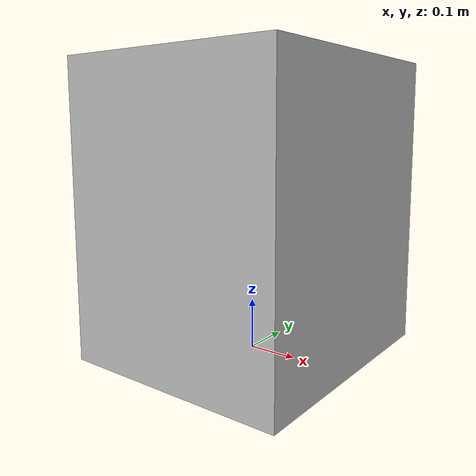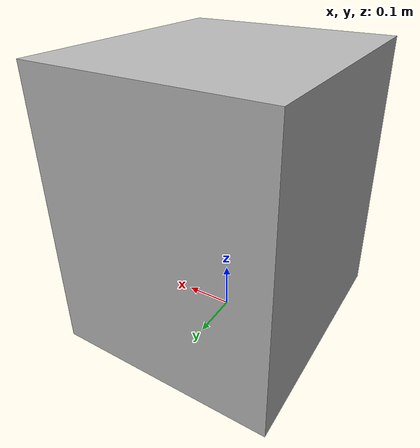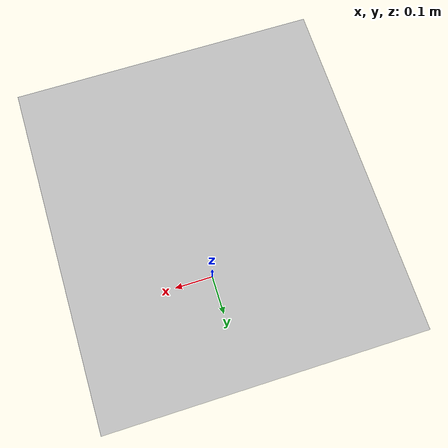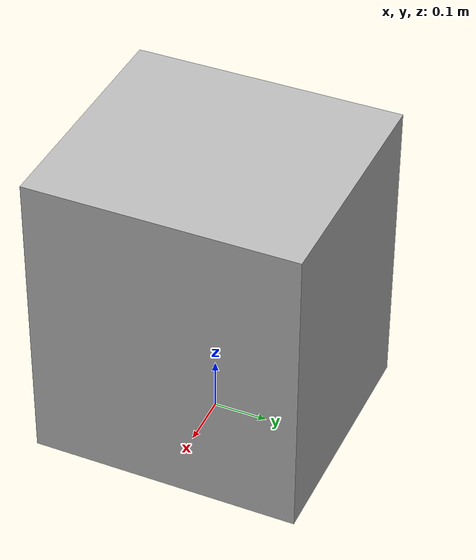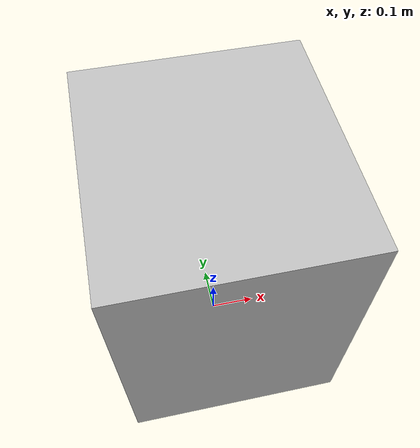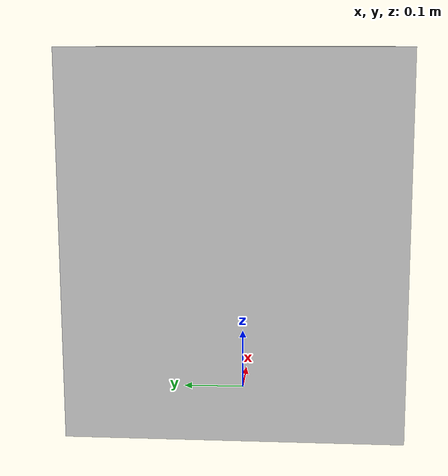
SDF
<?xml version="1.0" ?>
<sdf version="1.6">
  <model name="rwc2023/bedroom_small_drawers">
    <static>true</static>
    <link name="1_link">
      <collision name="1_col">
        <geometry>
          <box>
            <size>0.455 0.503 0.575</size>
          </box>
        </geometry>
      </collision>
      <visual name="1_vis">
        <geometry>
          <box>
            <size>0.455 0.503 0.575</size>
          </box>
        </geometry>
      </visual>
      <pose>0.0 0.0 0.2875 0 0 0</pose>
    </link>
    <link name="on_top_of">
      <virtual_volume name="on_top_of_vv">
        <geometry>
          <box>
            <size>0.435 0.443 0.25</size>
          </box>
        </geometry>
        <pose>0.0 0.0 0.72 0 0 0</pose>
      </virtual_volume>
    </link>
    <link name="in_front_of">
      <virtual_volume name="in_front_of_vv">
        <geometry>
          <box>
            <size>0.2 0.303 0.01</size>
          </box>
        </geometry>
        <pose>0.7275 0.0 0.005 0 0 0</pose>
      </virtual_volume>
    </link>
  </model>
</sdf>
